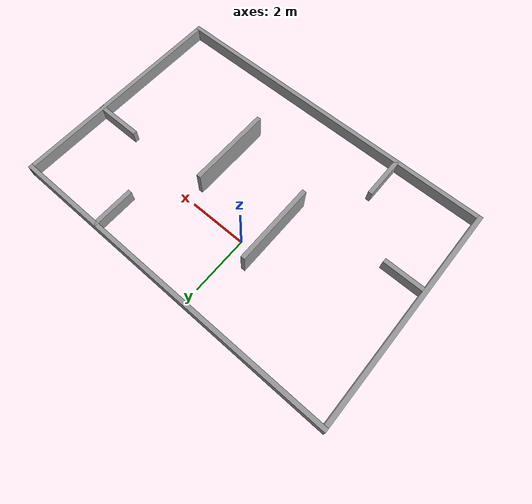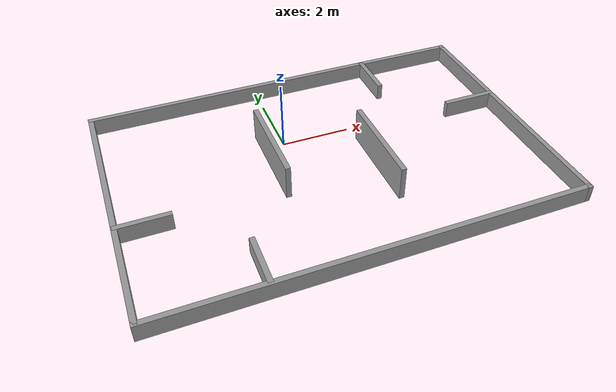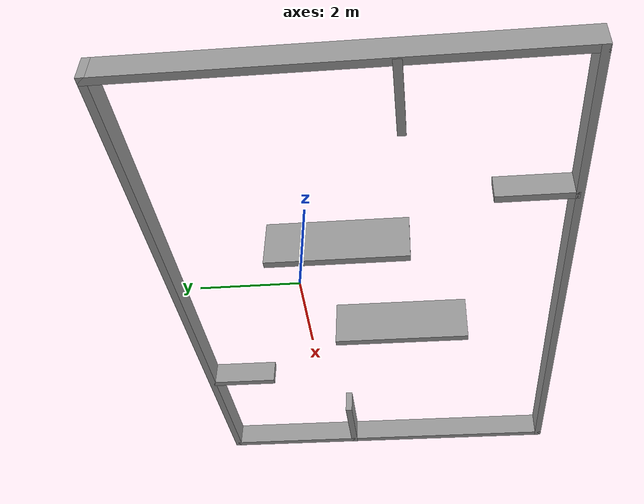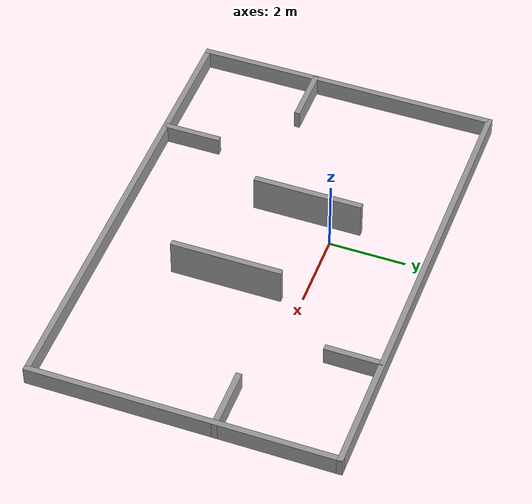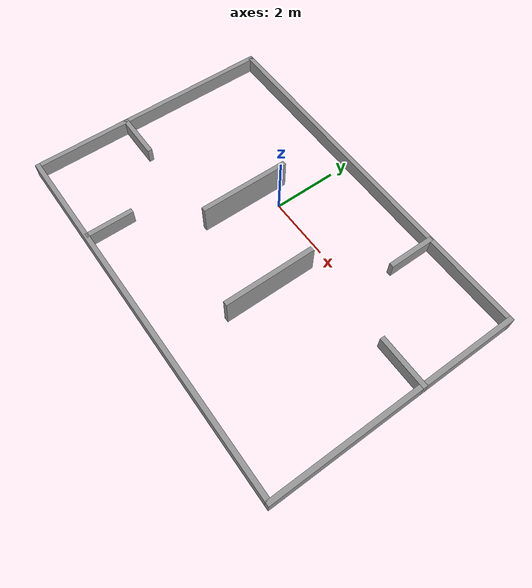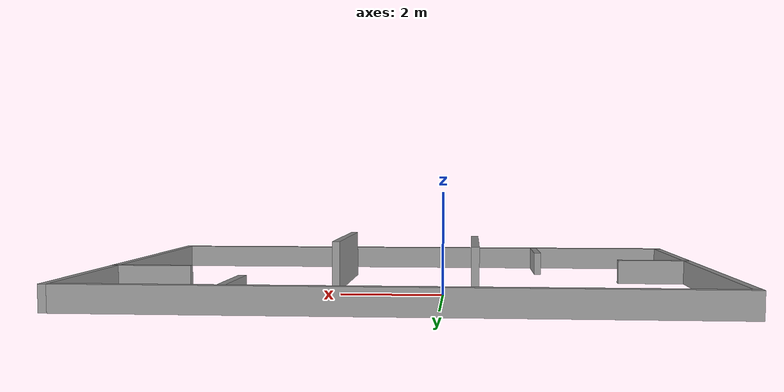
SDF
<?xml version='1.0'?>
<sdf version='1.7'>
  <model name='ua'>
    <pose>0.777 -1.327 0 0 -0 0</pose>
    <link name='Wall_14'>
      <collision name='Wall_14_Collision'>
        <geometry>
          <box>
            <size>1.5 0.15 0.5</size>
          </box>
        </geometry>
        <pose>0 0 0.25 0 -0 0</pose>
      </collision>
      <visual name='Wall_14_Visual'>
        <pose>0 0 0.25 0 -0 0</pose>
        <geometry>
          <box>
            <size>1.5 0.15 0.5</size>
          </box>
        </geometry>
        <material>
          <script>
            <uri>file://media/materials/scripts/gazebo.material</uri>
            <name>Gazebo/Grey</name>
          </script>
          <ambient>1 1 1 1</ambient>
        </material>
        <meta>
          <layer>0</layer>
        </meta>
      </visual>
      <pose>-5.225 -0.875 0 0 -0 0</pose>
    </link>
    <link name='Wall_16'>
      <collision name='Wall_16_Collision'>
        <geometry>
          <box>
            <size>1.5 0.15 0.5</size>
          </box>
        </geometry>
        <pose>0 0 0.25 0 -0 0</pose>
      </collision>
      <visual name='Wall_16_Visual'>
        <pose>0 0 0.25 0 -0 0</pose>
        <geometry>
          <box>
            <size>1.5 0.15 0.5</size>
          </box>
        </geometry>
        <material>
          <script>
            <uri>file://media/materials/scripts/gazebo.material</uri>
            <name>Gazebo/Grey</name>
          </script>
          <ambient>1 1 1 1</ambient>
        </material>
        <meta>
          <layer>0</layer>
        </meta>
      </visual>
      <pose>-2.875 -3.18 0 0 -0 1.5708</pose>
    </link>
    <link name='Wall_18'>
      <collision name='Wall_18_Collision'>
        <geometry>
          <box>
            <size>2.852 0.15 1</size>
          </box>
        </geometry>
        <pose>0 0 0.5 0 -0 0</pose>
      </collision>
      <visual name='Wall_18_Visual'>
        <pose>0 0 0.5 0 -0 0</pose>
        <geometry>
          <box>
            <size>2.852 0.15 1</size>
          </box>
        </geometry>
        <material>
          <script>
            <uri>file://media/materials/scripts/gazebo.material</uri>
            <name>Gazebo/Grey</name>
          </script>
          <ambient>1 1 1 1</ambient>
        </material>
        <meta>
          <layer>0</layer>
        </meta>
      </visual>
      <pose>-1.393 0.523 0 0 -0 -1.5708</pose>
    </link>
    <link name='Wall_2'>
      <collision name='Wall_2_Collision'>
        <geometry>
          <box>
            <size>12 0.15 0.5</size>
          </box>
        </geometry>
        <pose>0 0 0.25 0 -0 0</pose>
      </collision>
      <visual name='Wall_2_Visual'>
        <pose>0 0 0.25 0 -0 0</pose>
        <geometry>
          <box>
            <size>12 0.15 0.5</size>
          </box>
        </geometry>
        <material>
          <script>
            <uri>file://media/materials/scripts/gazebo.material</uri>
            <name>Gazebo/Grey</name>
          </script>
          <ambient>1 1 1 1</ambient>
        </material>
        <meta>
          <layer>0</layer>
        </meta>
      </visual>
      <pose>-0 -3.925 0 0 -0 0</pose>
    </link>
    <link name='Wall_23'>
      <collision name='Wall_23_Collision'>
        <geometry>
          <box>
            <size>1.5 0.15 0.5</size>
          </box>
        </geometry>
        <pose>0 0 0.25 0 -0 0</pose>
      </collision>
      <visual name='Wall_23_Visual'>
        <pose>0 0 0.25 0 -0 0</pose>
        <geometry>
          <box>
            <size>1.5 0.15 0.5</size>
          </box>
        </geometry>
        <material>
          <script>
            <uri>file://media/materials/scripts/gazebo.material</uri>
            <name>Gazebo/Grey</name>
          </script>
          <ambient>1 1 1 1</ambient>
        </material>
        <meta>
          <layer>0</layer>
        </meta>
      </visual>
      <pose>2.875 3.211 0 0 -0 -1.5708</pose>
    </link>
    <link name='Wall_25'>
      <collision name='Wall_25_Collision'>
        <geometry>
          <box>
            <size>1.65 0.15 0.5</size>
          </box>
        </geometry>
        <pose>0 0 0.25 0 -0 0</pose>
      </collision>
      <visual name='Wall_25_Visual'>
        <pose>0 0 0.25 0 -0 0</pose>
        <geometry>
          <box>
            <size>1.65 0.15 0.5</size>
          </box>
        </geometry>
        <material>
          <script>
            <uri>file://media/materials/scripts/gazebo.material</uri>
            <name>Gazebo/Grey</name>
          </script>
          <ambient>1 1 1 1</ambient>
        </material>
        <meta>
          <layer>0</layer>
        </meta>
      </visual>
      <pose>5.175 0.845 0 0 -0 3.14159</pose>
    </link>
    <link name='Wall_27'>
      <collision name='Wall_27_Collision'>
        <geometry>
          <box>
            <size>2.889 0.15 1</size>
          </box>
        </geometry>
        <pose>0 0 0.5 0 -0 0</pose>
      </collision>
      <visual name='Wall_27_Visual'>
        <pose>0 0 0.5 0 -0 0</pose>
        <geometry>
          <box>
            <size>2.889 0.15 1</size>
          </box>
        </geometry>
        <material>
          <script>
            <uri>file://media/materials/scripts/gazebo.material</uri>
            <name>Gazebo/Grey</name>
          </script>
          <ambient>1 1 1 1</ambient>
        </material>
        <meta>
          <layer>0</layer>
        </meta>
      </visual>
      <pose>1.393 -0.6055 0 0 -0 -1.5708</pose>
    </link>
    <link name='Wall_3'>
      <collision name='Wall_3_Collision'>
        <geometry>
          <box>
            <size>8 0.15 0.5</size>
          </box>
        </geometry>
        <pose>0 0 0.25 0 -0 0</pose>
      </collision>
      <visual name='Wall_3_Visual'>
        <pose>0 0 0.25 0 -0 0</pose>
        <geometry>
          <box>
            <size>8 0.15 0.5</size>
          </box>
        </geometry>
        <material>
          <script>
            <uri>file://media/materials/scripts/gazebo.material</uri>
            <name>Gazebo/Grey</name>
          </script>
          <ambient>1 1 1 1</ambient>
        </material>
        <meta>
          <layer>0</layer>
        </meta>
      </visual>
      <pose>5.925 0 0 0 -0 1.5708</pose>
    </link>
    <link name='Wall_5'>
      <collision name='Wall_5_Collision'>
        <geometry>
          <box>
            <size>12 0.15 0.5</size>
          </box>
        </geometry>
        <pose>0 0 0.25 0 -0 0</pose>
      </collision>
      <visual name='Wall_5_Visual'>
        <pose>0 0 0.25 0 -0 0</pose>
        <geometry>
          <box>
            <size>12 0.15 0.5</size>
          </box>
        </geometry>
        <material>
          <script>
            <uri>file://media/materials/scripts/gazebo.material</uri>
            <name>Gazebo/Grey</name>
          </script>
          <ambient>1 1 1 1</ambient>
        </material>
        <meta>
          <layer>0</layer>
        </meta>
      </visual>
      <pose>-0 3.925 0 0 -0 3.14159</pose>
    </link>
    <link name='Wall_6'>
      <collision name='Wall_6_Collision'>
        <geometry>
          <box>
            <size>7.99968 0.15 0.5</size>
          </box>
        </geometry>
        <pose>0 0 0.25 0 -0 0</pose>
      </collision>
      <visual name='Wall_6_Visual'>
        <pose>0 0 0.25 0 -0 0</pose>
        <geometry>
          <box>
            <size>7.99968 0.15 0.5</size>
          </box>
        </geometry>
        <material>
          <script>
            <uri>file://media/materials/scripts/gazebo.material</uri>
            <name>Gazebo/Grey</name>
          </script>
          <ambient>1 1 1 1</ambient>
        </material>
        <meta>
          <layer>0</layer>
        </meta>
      </visual>
      <pose>-5.925 0 0 0 -0 -1.5708</pose>
    </link>
    <static>1</static>
  </model>
</sdf>
